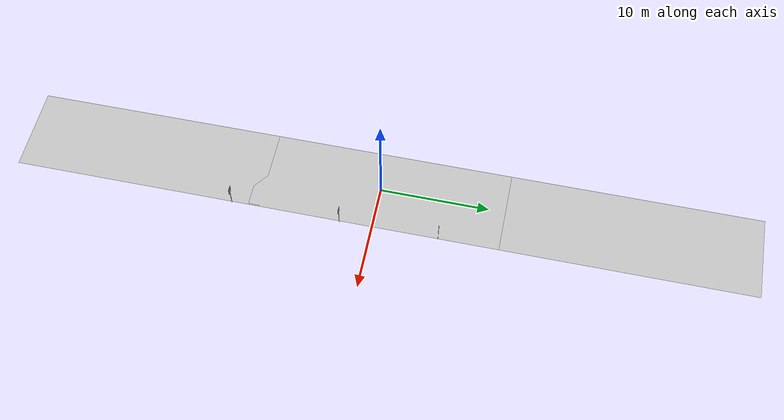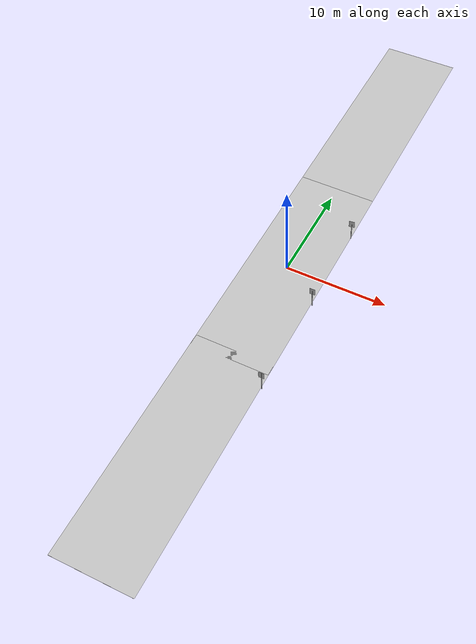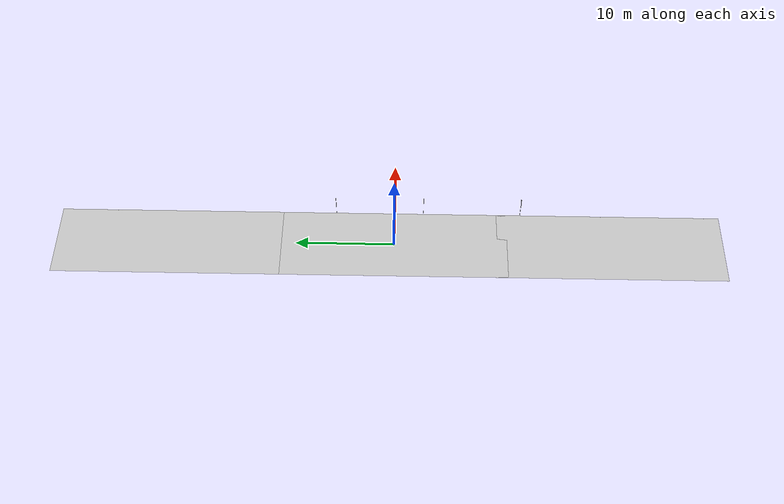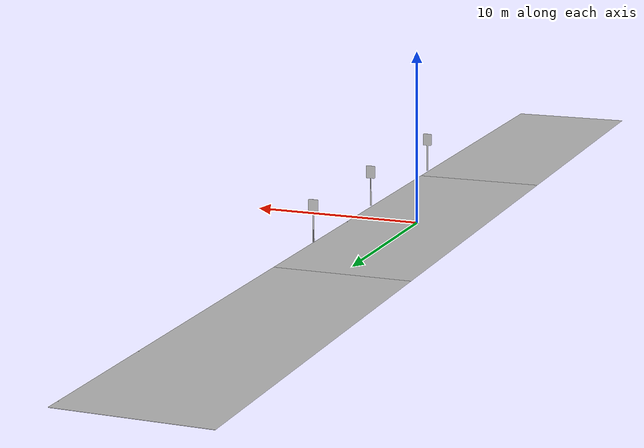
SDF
<sdf version="1.6">
 <world name="default">
  <light name="sun" type="directional">
   <pose>7.485 -12.379 17.2198 0 -0 0</pose>
   <diffuse>0.7 0.7 0.7 1</diffuse>
   <specular>0.2 0.2 0.2 1</specular>
   <direction>-0.1698 0.1 -0.3</direction>
   <attenuation>
    <range>1000</range>
    <constant>0.9</constant>
    <linear>0.01</linear>
    <quadratic>0.001</quadratic>
   </attenuation>
  </light>
  <gravity>0 0 -9.8</gravity>
  <magnetic_field>6e-06 2.3e-05 -4.2e-05</magnetic_field>
  <atmosphere type="adiabatic"/>
  <physics name="default_physics" default="0" type="ode">
   <max_step_size>0.001</max_step_size>
   <real_time_factor>1</real_time_factor>
   <real_time_update_rate>1000</real_time_update_rate>
  </physics>
  <scene><ambient>0.4 0.4 0.4 1</ambient><background>0.7 0.7 0.7 1</background><shadows>1</shadows></scene>
  <spherical_coordinates>
   <surface_model>EARTH_WGS84</surface_model>
   <latitude_deg>0</latitude_deg>
   <longitude_deg>0</longitude_deg>
   <elevation>0</elevation>
   <heading_deg>0</heading_deg>
  </spherical_coordinates>
  <model name="limit100_0">
   <static>1</static>
   <link name="limit100::body">
    <visual name="visual">
     <geometry><mesh><uri>model://limit100/limit100.dae</uri><scale>1 1 1</scale></mesh></geometry>
    </visual>
    <collision name="collision">
     <geometry><mesh><uri>model://limit100/limit100.dae</uri><scale>1 1 1</scale></mesh></geometry>
    </collision>
   </link>
   <pose>3.914 6 0.009 0 0 -1.91986</pose>
   <pose>3.91426 -3.84239 0.008568 0 -0 0</pose>
  </model>
  <model name="road_1">
   <static>1</static>
   <link name="road::body">
    <collision name="road">
     <pose>0 0 0.016 0 -0 0</pose>
     <geometry><box><size>22.938 22.954 0.016</size></box></geometry>
     <surface>
      <friction><ode><mu>100000.0</mu><mu2>100000.0</mu2><slip1>0.0</slip1><slip2>0.0</slip2></ode></friction>
     </surface>
    </collision>
    <visual name="road">
     <geometry><mesh><uri>model://road/meshes/road.dae</uri><scale>1 1 1</scale></mesh></geometry>
    </visual>
    <velocity_decay><linear>0</linear><angular>0</angular></velocity_decay>
   </link>
   <pose>0 23 0.001 0 -0 1.5708</pose>
   <pose>4.59743 11.2728 0.015502 0 -0 0</pose>
  </model>
  <model name="road_0">
   <static>1</static>
   <link name="road::body">
    <collision name="road">
     <pose>0 0 0.016 0 -0 0</pose>
     <geometry><box><size>22.938 22.954 0.016</size></box></geometry>
     <surface>
      <friction><ode><mu>100000.0</mu><mu2>100000.0</mu2><slip1>0.0</slip1><slip2>0.0</slip2></ode></friction>
     </surface>
    </collision>
    <visual name="road">
     <geometry><mesh><uri>model://road/meshes/road.dae</uri><scale>1 1 1</scale></mesh></geometry>
    </visual>
    <velocity_decay><linear>0</linear><angular>0</angular></velocity_decay>
   </link>
   <pose>0 0 0.001 0 -0 1.5708</pose>
   <pose>-0.175982 -1.55719 0.015502 0 -0 0</pose>
  </model>
  <model name="limit20_0">
   <static>1</static>
   <link name="limit20::body">
    <visual name="visual">
     <geometry><mesh><uri>model://limit20/limit20.dae</uri><scale>1 1 1</scale></mesh></geometry>
    </visual>
    <collision name="collision">
     <geometry><mesh><uri>model://limit20/limit20.dae</uri><scale>1 1 1</scale></mesh></geometry>
    </collision>
   </link>
   <pose>4.015 -3 0.008 0 -0 0</pose>
   <pose>4.01523 7.28228 0.00838 0 -0 0</pose>
  </model>
  <model name="road_2">
   <static>1</static>
   <link name="road::body">
    <collision name="road">
     <pose>0 0 0.016 0 -0 0</pose>
     <geometry><box><size>22.938 22.954 0.016</size></box></geometry>
     <surface>
      <friction><ode><mu>100000.0</mu><mu2>100000.0</mu2><slip1>0.0</slip1><slip2>0.0</slip2></ode></friction>
     </surface>
    </collision>
    <visual name="road">
     <geometry><mesh><uri>model://road/meshes/road.dae</uri><scale>1 1 1</scale></mesh></geometry>
    </visual>
    <velocity_decay><linear>0</linear><angular>0</angular></velocity_decay>
   </link>
   <pose>0 -22 0.001 0 -0 1.5708</pose>
   <pose>5.01097 -6.2965 0.015502 0 -0 0</pose>
  </model>
  <model name="stop_0">
   <pose>3.986 -13 0.008 0 -0 0</pose>
   <static>1</static>
   <link name="stop::body">
    <visual name="visual">
     <geometry><mesh><uri>model://stop/stop.dae</uri><scale>1 1 1</scale></mesh></geometry>
    </visual>
    <collision name="collision">
     <geometry><mesh><uri>model://stop/stop.dae</uri><scale>1 1 1</scale></mesh></geometry>
    </collision>
   </link>
  </model>
 </world>
</sdf>
